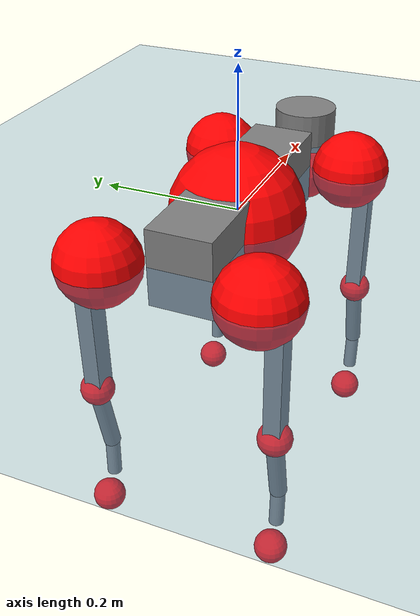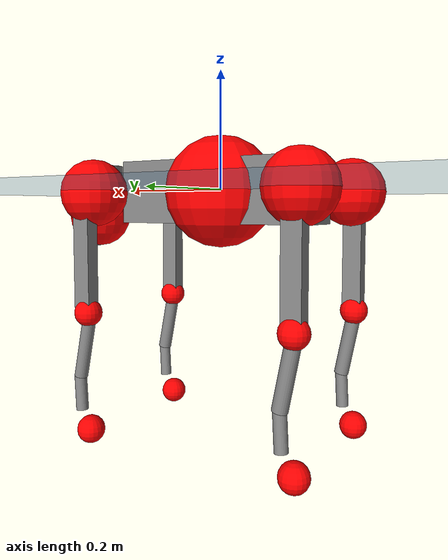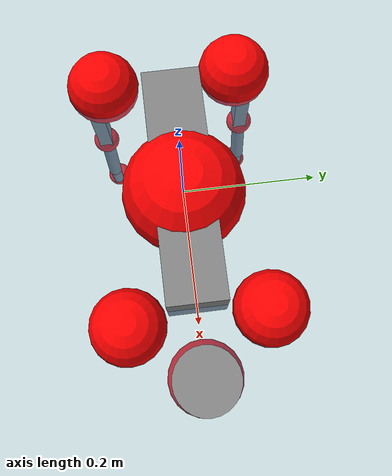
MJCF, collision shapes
<mujoco model="go2">
  <compiler angle="radian" assetdir="assets" balanceinertia="true" inertiafromgeom="false"/>

  <option timestep="0.005" density="1.2" viscosity="2e-05"/>

  <size nkey="1"/>

  <visual>
    <quality shadowsize="8192"/>
    <map shadowclip="0.5"/>
  </visual>

  <default>
    <default class="/">
      <geom contype="0" conaffinity="0" group="1" solref="-1000 -80"/>
      <site size="0.01 0.005 0.005" group="5"/>
      <general forcelimited="true" biastype="affine" gainprm="20" biasprm="0 -20 -0.5"/>
      <default class="go2">
        <joint armature="0.01" damping="0.01" frictionloss="0.2"/>
        <geom condim="1" margin="0.001"/>
        <default class="visual">
          <geom type="mesh" group="2"/>
        </default>
        <default class="collision">
          <geom group="3"/>
          <default class="foot">
            <geom size="0.022 0 0" condim="6" priority="1" friction="0.8 0.02 0.01" solimp="0.015 1 0.022"/>
          </default>
        </default>
        <default class="reward_collision_sphere">
          <geom group="5" rgba="1 0 0 1"/>
        </default>
      </default>
    </default>
  </default>

  <asset>
    <texture type="skybox" colorspace="auto" name="//unnamed_texture_0" builtin="gradient" rgb1="0.95 0.95 0.95" rgb2="0.95 0.95 0.95" width="100" height="600"/>
    <texture type="2d" colorspace="auto" name="texplane" builtin="checker" rgb1="0.345 0.575 0.748" rgb2="0.345 0.575 0.748" markrgb="1 1 1" width="512" height="512"/>
    <material name="MatPlane" class="/" texture="texplane" texuniform="true" texrepeat="2 2" specular="0.9"/>
    <material name="metal" class="/" rgba="0.9 0.95 0.95 1"/>
    <material name="black" class="/" rgba="0 0 0 1"/>
    <material name="white" class="/"/>
    <material name="gray" class="/" rgba="0.671705 0.692426 0.77427 1"/>
    <mesh name="base_0" class="/" file="base_0.obj"/>
    <mesh name="base_1" class="/" file="base_1.obj"/>
    <mesh name="base_2" class="/" file="base_2.obj"/>
    <mesh name="base_3" class="/" file="base_3.obj"/>
    <mesh name="base_4" class="/" file="base_4.obj"/>
    <mesh name="hip_0" class="/" file="hip_0.obj"/>
    <mesh name="hip_1" class="/" file="hip_1.obj"/>
    <mesh name="thigh_0" class="/" file="thigh_0.obj"/>
    <mesh name="thigh_1" class="/" file="thigh_1.obj"/>
    <mesh name="thigh_mirror_0" class="/" file="thigh_mirror_0.obj"/>
    <mesh name="thigh_mirror_1" class="/" file="thigh_mirror_1.obj"/>
    <mesh name="calf_0" class="/" file="calf_0.obj"/>
    <mesh name="calf_1" class="/" file="calf_1.obj"/>
    <mesh name="calf_mirror_0" class="/" file="calf_mirror_0.obj"/>
    <mesh name="calf_mirror_1" class="/" file="calf_mirror_1.obj"/>
    <mesh name="foot" class="/" file="foot.obj"/>
  </asset>

  <worldbody>
    <geom name="floor" class="/" size="100 100 0.125" type="plane" group="0" material="MatPlane"/>
    <light name="toplight_shadow" class="/" pos="0 0 5" dir="0.0990148 0.0990148 -0.990148" type="directional" ambient="0.04 0.04 0.04" diffuse="0.55 0.55 0.55" specular="0.12 0.12 0.12"/>
    <light name="toplight_fill" class="/" pos="0 0 5" dir="0.0990148 0.0990148 -0.990148" type="directional" castshadow="false" ambient="0.04 0.04 0.04" diffuse="0.3 0.3 0.3" specular="0.08 0.08 0.08"/>
    <body name="trunk" childclass="go2" pos="-0.00132041 0.00113393 -0.00249924" quat="1 0.000560169 0.000296617 0.000691065">
      <inertial pos="0.0181623 0.00204981 -0.0053965" quat="0.000976641 0.712404 -0.00124522 0.701768" mass="5.95335" diaginertia="0.0983266 0.0591457 0.0188445"/>
      <joint name="//unnamed_joint_0" type="free" armature="0" damping="0" frictionloss="0"/>
      <geom name="//unnamed_geom_1" class="visual" material="black" mesh="base_0"/>
      <geom name="//unnamed_geom_2" class="visual" material="black" mesh="base_1"/>
      <geom name="//unnamed_geom_3" class="visual" material="black" mesh="base_2"/>
      <geom name="//unnamed_geom_4" class="visual" material="white" mesh="base_3"/>
      <geom name="//unnamed_geom_5" class="visual" material="gray" mesh="base_4"/>
      <geom name="trunk_1" class="collision" size="0.177979 0.0442345 0.0539329" type="box"/>
      <geom name="trunk_2" class="collision" size="0.0473096 0.0425786" pos="0.280265 0 0.00950947" type="cylinder"/>
      <geom name="trunk_3" class="collision" size="0.044471" pos="0.288132 0 -0.0570568"/>
      <geom name="//unnamed_geom_9" class="reward_collision_sphere" size="0.0946192"/>
      <geom name="//unnamed_geom_10" class="reward_collision_sphere" size="0.0567715" pos="0.275348 0 -0.0427926"/>
      <site name="imu" pos="-0.013658 0.0128101 0.0266285" size="0.00946192"/>
      <camera name="track" pos="0 -1.80849 0" quat="0.707107 0.707107 0 0" mode="trackcom"/>
      <camera name="ego_camera" pos="0.306816 0 0.0427926" quat="-0.5 -0.5 0.5 0.5"/>
      <body name="FL_hip" pos="0.189979 0.041989 -0.00227332" quat="0.999999 -0.000793921 0.000325423 -0.00053189">
        <inertial pos="-0.00778229 0.00189482 -0.00256027" quat="0.493998 0.496572 0.509542 0.499749" mass="0.567741" diaginertia="0.000799165 0.000354452 0.000379335"/>
        <joint name="FL_hip_joint" pos="0 0 0" axis="0.999993 0.00371742 -7.38744e-06" range="-1.06522 1.04703" armature="0.0099366" damping="0.019333" frictionloss="0.177249"/>
        <geom name="//unnamed_geom_11" class="visual" material="metal" mesh="hip_0"/>
        <geom name="//unnamed_geom_12" class="visual" material="gray" mesh="hip_1"/>
        <geom name="//unnamed_geom_13" class="collision" size="0.0435248 0.0189238" pos="0 0.0723395 0" quat="0.707107 0.707107 0 0" type="cylinder"/>
        <geom name="//unnamed_geom_14" class="reward_collision_sphere" size="0.0567715" pos="0 0.063297 0"/>
        <body name="FL_thigh" pos="0.00121362 0.0851847 -0.00210855" quat="1 -7.82224e-06 0.000505651 -8.47515e-05">
          <inertial pos="-0.0030323 -0.019042 -0.028509" quat="0.832784 0.0799958 -0.00948263 0.547705" mass="0.949902" diaginertia="0.00553909 0.00340509 0.000693881"/>
          <joint name="FL_thigh_joint" pos="0 0 0" axis="-0.0152428 0.999705 0.018919" stiffness="0.0130433" range="-1.56607 3.44525" armature="0.00836977" damping="0.0218068" frictionloss="0.190309"/>
          <geom name="//unnamed_geom_15" class="visual" material="metal" mesh="thigh_0"/>
          <geom name="//unnamed_geom_16" class="visual" material="gray" mesh="thigh_1"/>
          <geom name="//unnamed_geom_17" class="collision" size="0.100769 0.0115908 0.0160853" pos="0 0 -0.101276" quat="0.707107 0 0.707107 0" type="box"/>
          <body name="FL_calf" pos="-0.00263505 -0.00155354 -0.201344" quat="1 -8.28203e-05 5.97521e-05 0.000224511">
            <inertial pos="0.00351721 -0.00282285 -0.132789" quat="0.710719 0.00230107 -0.00577349 0.703448" mass="0.19973" diaginertia="0.00137947 0.000850784 4.10102e-05"/>
            <joint name="FL_calf_joint" pos="0 0 0" axis="-0.00016762 0.999996 0.00285393" stiffness="0.017262" range="-2.69079 -0.831427" armature="0.00942437" damping="0.00716258" frictionloss="0.181601"/>
            <geom name="//unnamed_geom_18" class="visual" material="gray" mesh="calf_0"/>
            <geom name="//unnamed_geom_19" class="visual" material="black" mesh="calf_1"/>
            <geom name="FL_calf0" class="collision" size="0.0113543 0.0567715" pos="0.00786708 0 -0.0570568" quat="0.994493 0 -0.104807 0" type="cylinder"/>
            <geom name="//unnamed_geom_21" class="collision" size="0.0104081 0.0307512" pos="0.0196677 0 -0.14074" quat="0.999688 0 0.0249974 0" type="cylinder"/>
            <geom name="//unnamed_geom_22" class="visual" pos="0 0 -0.202552" quat="1 0 0 0" material="black" mesh="foot"/>
            <geom name="FL_foot" class="foot" size="0.0227538" pos="-0.00196677 0 -0.202552"/>
            <geom name="//unnamed_geom_24" class="reward_collision_sphere" size="0.0236548"/>
            <geom name="//unnamed_geom_25" class="reward_collision_sphere" size="0.0236548" pos="-0.00196677 0 -0.202552"/>
            <site name="FL_foot" class="foot" pos="-0.00196677 0 -0.202552" size="0.00946192"/>
          </body>
        </body>
      </body>
      <body name="FR_hip" pos="0.192627 -0.0394603 -0.00129509" quat="1 0.000149441 0.000331442 -4.15382e-05">
        <inertial pos="-0.0076561 -0.00324359 -0.00112348" quat="0.497207 0.505481 0.496254 0.501006" mass="0.563128" diaginertia="0.000774505 0.000366058 0.000374482"/>
        <joint name="FR_hip_joint" pos="0 0 0" axis="1 0.000540648 0.000583723" stiffness="0.00731667" range="-1.02529 1.04408" armature="0.0092643" damping="0.0108446" frictionloss="0.214657"/>
        <geom name="//unnamed_geom_26" class="visual" pos="0 -4.06863e-10 -1.74512e-08" quat="4.63268e-05 1 0 0" material="metal" mesh="hip_0"/>
        <geom name="//unnamed_geom_27" class="visual" pos="0 -6.59573e-10 4.31635e-08" quat="4.63268e-05 1 0 0" material="gray" mesh="hip_1"/>
        <geom name="//unnamed_geom_28" class="collision" size="0.0435248 0.0189238" pos="0 -0.0723395 0" quat="0.707107 0.707107 0 0" type="cylinder"/>
        <geom name="//unnamed_geom_29" class="reward_collision_sphere" size="0.0567715" pos="0 -0.063297 0"/>
        <body name="FR_thigh" pos="0.00240226 -0.0865829 -0.000144377" quat="0.999999 0.00124647 -9.43879e-05 -0.000555839">
          <inertial pos="-0.00338698 0.0202238 -0.0295704" quat="0.548995 -0.0247567 0.0976569 0.829732" mass="0.991557" diaginertia="0.0052205 0.00346594 0.000670559"/>
          <joint name="FR_thigh_joint" pos="0 0 0" axis="-0.0012154 -0.999996 -0.00255362" range="-3.46476 1.58335" armature="0.00922212" damping="0.012965" frictionloss="0.209503"/>
          <geom name="//unnamed_geom_30" class="visual" material="metal" mesh="thigh_mirror_0"/>
          <geom name="//unnamed_geom_31" class="visual" material="gray" mesh="thigh_mirror_1"/>
          <geom name="//unnamed_geom_32" class="collision" size="0.100769 0.0115908 0.0160853" pos="0 0 -0.101276" quat="0.707107 0 0.707107 0" type="box"/>
          <body name="FR_calf" pos="0.000224923 -0.000317367 -0.201867" quat="1 -3.26308e-05 2.35223e-05 2.0664e-05">
            <inertial pos="0.00806824 -0.000288418 -0.137301" quat="0.708615 -0.0131514 -0.00175011 0.70547" mass="0.209637" diaginertia="0.00146759 0.000888928 4.31885e-05"/>
            <joint name="FR_calf_joint" pos="0 0 0" axis="-0.0132017 -0.999883 -0.00768722" range="0.818747 2.67005" armature="0.00993087" damping="0.0108617" frictionloss="0.190259"/>
            <geom name="//unnamed_geom_33" class="visual" material="gray" mesh="calf_mirror_0"/>
            <geom name="//unnamed_geom_34" class="visual" material="black" mesh="calf_mirror_1"/>
            <geom name="FR_calf0" class="collision" size="0.0123005 0.0567715" pos="0.00983385 0 -0.0570568" quat="0.995004 0 -0.0998334 0" type="cylinder"/>
            <geom name="//unnamed_geom_36" class="collision" size="0.0104081 0.0307512" pos="0.0196677 0 -0.14074" quat="0.999688 0 0.0249974 0" type="cylinder"/>
            <geom name="//unnamed_geom_37" class="visual" pos="0 0 -0.202552" quat="1 0 0 0" material="black" mesh="foot"/>
            <geom name="FR_foot" class="foot" size="0.0191401" pos="-0.00196677 0 -0.202552"/>
            <geom name="//unnamed_geom_39" class="reward_collision_sphere" size="0.0236548"/>
            <geom name="//unnamed_geom_40" class="reward_collision_sphere" size="0.0236548" pos="-0.00196677 0 -0.202552"/>
            <site name="FR_foot" class="foot" pos="-0.00196677 0 -0.202552" size="0.00946192"/>
          </body>
        </body>
      </body>
      <body name="RL_hip" pos="-0.192368 0.0389086 0.00199023" quat="1 -0.000186115 0.000192382 -0.000287578">
        <inertial pos="0.00455911 0.0015418 0.00171338" quat="0.501561 0.499761 0.499561 0.499114" mass="0.563112" diaginertia="0.000803609 0.000349562 0.000369681"/>
        <joint name="RL_hip_joint" pos="0 0 0" axis="-0.999992 -0.00304424 -0.00256447" stiffness="0.0123716" range="-1.09072 1.03412" armature="0.00957182" damping="0.0023317" frictionloss="0.182851"/>
        <geom name="//unnamed_geom_41" class="visual" pos="-2.82588e-10 0 -5.53938e-08" quat="4.63268e-05 0 1 0" material="metal" mesh="hip_0"/>
        <geom name="//unnamed_geom_42" class="visual" pos="-4.58109e-10 0 -4.91264e-08" quat="4.63268e-05 0 1 0" material="gray" mesh="hip_1"/>
        <geom name="//unnamed_geom_43" class="collision" size="0.0435248 0.0189238" pos="0 0.0723395 0" quat="0.707107 0.707107 0 0" type="cylinder"/>
        <geom name="//unnamed_geom_44" class="reward_collision_sphere" size="0.0567715" pos="0 0.063297 0"/>
        <body name="RL_thigh" pos="-0.000657203 0.0825947 0.00211147" quat="1 2.49033e-05 -1.09194e-06 -8.95943e-06">
          <inertial pos="-0.00329906 -0.0192029 -0.0286362" quat="0.829524 0.0875435 -0.0204643 0.551187" mass="0.98789" diaginertia="0.0057478 0.00361054 0.000713852"/>
          <joint name="RL_thigh_joint" pos="0 0 0" axis="0.000304977 1 0.000159077" range="-0.509768 4.49902" armature="0.0107427" damping="0.00608215" frictionloss="0.197702"/>
          <geom name="//unnamed_geom_45" class="visual" material="metal" mesh="thigh_0"/>
          <geom name="//unnamed_geom_46" class="visual" material="gray" mesh="thigh_1"/>
          <geom name="//unnamed_geom_47" class="collision" size="0.100769 0.0115908 0.0160853" pos="0 0 -0.101276" quat="0.707107 0 0.707107 0" type="box"/>
          <body name="RL_calf" pos="-0.00144266 0.00195068 -0.203888" quat="1 -0.000212037 -0.000198103 0.00022704">
            <inertial pos="0.00831984 -0.00265411 -0.132834" quat="0.709415 0.00112599 -0.00256698 0.704786" mass="0.201143" diaginertia="0.00136332 0.000912084 3.98008e-05"/>
            <joint name="RL_calf_joint" pos="0 0 0" axis="0.00548373 0.999974 0.0046719" stiffness="0.0148461" range="-2.67174 -0.836066" armature="0.00981588" damping="0" frictionloss="0.20958"/>
            <geom name="//unnamed_geom_48" class="visual" material="gray" mesh="calf_0"/>
            <geom name="//unnamed_geom_49" class="visual" material="black" mesh="calf_1"/>
            <geom name="RL_calf0" class="collision" size="0.0123005 0.0567715" pos="0.00983385 0 -0.0570568" quat="0.995004 0 -0.0998334 0" type="cylinder"/>
            <geom name="//unnamed_geom_51" class="collision" size="0.0104081 0.0307512" pos="0.0196677 0 -0.14074" quat="0.999688 0 0.0249974 0" type="cylinder"/>
            <geom name="//unnamed_geom_52" class="visual" pos="0 0 -0.202552" quat="1 0 0 0" material="black" mesh="foot"/>
            <geom name="RL_foot" class="foot" size="0.0219338" pos="-0.00196677 0 -0.202552"/>
            <geom name="//unnamed_geom_54" class="reward_collision_sphere" size="0.0236548"/>
            <geom name="//unnamed_geom_55" class="reward_collision_sphere" size="0.0236548" pos="-0.00196677 0 -0.202552"/>
            <site name="RL_foot" class="foot" pos="-0.00196677 0 -0.202552" size="0.00946192"/>
          </body>
        </body>
      </body>
      <body name="RR_hip" pos="-0.189912 -0.0449709 -0.00155847" quat="0.999999 -0.00012617 1.05451e-06 0.00151967">
        <inertial pos="0.00450874 -0.00204065 -0.00148362" quat="0.499067 0.497129 0.497919 0.505838" mass="0.60865" diaginertia="0.000817813 0.00036113 0.000383953"/>
        <joint name="RR_hip_joint" pos="0 0 0" axis="-0.999924 0.00439877 -0.0115586" range="-0.993079 1.03857" armature="0.00840229" damping="0.015524" frictionloss="0.214851"/>
        <geom name="//unnamed_geom_56" class="visual" pos="2.79848e-10 -4.06863e-10 -3.79426e-08" quat="2.14617e-09 4.63268e-05 4.63268e-05 -1" material="metal" mesh="hip_0"/>
        <geom name="//unnamed_geom_57" class="visual" pos="4.64886e-10 -6.59573e-10 -9.22899e-08" quat="2.14617e-09 4.63268e-05 4.63268e-05 -1" material="gray" mesh="hip_1"/>
        <geom name="//unnamed_geom_58" class="collision" size="0.0435248 0.0189238" pos="0 -0.0723395 0" quat="0.707107 0.707107 0 0" type="cylinder"/>
        <geom name="//unnamed_geom_59" class="reward_collision_sphere" size="0.0567715" pos="0 -0.063297 0"/>
        <body name="RR_thigh" pos="0.0021946 -0.0868656 -0.00153052" quat="1 5.51907e-05 0.00014152 -7.94131e-05">
          <inertial pos="-0.00548145 0.0215123 -0.0310431" quat="0.550058 -0.0200523 0.0834475 0.830705" mass="0.967379" diaginertia="0.00563016 0.0035025 0.000684479"/>
          <joint name="RR_thigh_joint" pos="0 0 0" axis="0.00030331 -1 0.000270054" range="-4.51208 0.511369" armature="0.00912964" damping="0.018407" frictionloss="0.186852"/>
          <geom name="//unnamed_geom_60" class="visual" material="metal" mesh="thigh_mirror_0"/>
          <geom name="//unnamed_geom_61" class="visual" material="gray" mesh="thigh_mirror_1"/>
          <geom name="//unnamed_geom_62" class="collision" size="0.100769 0.0115908 0.0160853" pos="0 0 -0.101276" quat="0.707107 0 0.707107 0" type="box"/>
          <body name="RR_calf" pos="-0.00147782 -0.00045384 -0.202123" quat="1 0.00034283 -0.000229147 0.000386253">
            <inertial pos="0.00879566 0.000634893 -0.134947" quat="0.700911 -7.2679e-05 -0.00127085 0.713248" mass="0.197753" diaginertia="0.00130848 0.00086518 4.03191e-05"/>
            <joint name="RR_calf_joint" pos="0 0 0" axis="-0.000250949 -1 0.000503667" range="0.84113 2.76721" armature="0.00834695" damping="0.0251914" frictionloss="0.198292"/>
            <geom name="//unnamed_geom_63" class="visual" material="gray" mesh="calf_mirror_0"/>
            <geom name="//unnamed_geom_64" class="visual" material="black" mesh="calf_mirror_1"/>
            <geom name="RR_calf0" class="collision" size="0.0123005 0.0567715" pos="0.00983385 0 -0.0570568" quat="0.995004 0 -0.0998334 0" type="cylinder"/>
            <geom name="//unnamed_geom_66" class="collision" size="0.0104081 0.0307512" pos="0.0196677 0 -0.14074" quat="0.999688 0 0.0249974 0" type="cylinder"/>
            <geom name="//unnamed_geom_67" class="visual" pos="0 0 -0.202552" quat="1 0 0 0" material="black" mesh="foot"/>
            <geom name="RR_foot" class="foot" size="0.0166157" pos="-0.00196677 0 -0.202552"/>
            <geom name="//unnamed_geom_69" class="reward_collision_sphere" size="0.0236548"/>
            <geom name="//unnamed_geom_70" class="reward_collision_sphere" size="0.0236548" pos="-0.00196677 0 -0.202552"/>
            <site name="RR_foot" class="foot" pos="-0.00196677 0 -0.202552" size="0.00946192"/>
          </body>
        </body>
      </body>
    </body>
  </worldbody>

  <contact>
    <pair class="/" geom1="floor" geom2="FL_foot" name="//unnamed_contact_0"/>
    <pair class="/" geom1="floor" geom2="FR_foot" name="//unnamed_contact_1"/>
    <pair class="/" geom1="floor" geom2="RL_foot" name="//unnamed_contact_2"/>
    <pair class="/" geom1="floor" geom2="RR_foot" name="//unnamed_contact_3"/>
  </contact>

  <actuator>
    <general name="FL_hip" class="/" joint="FL_hip_joint" forcerange="-23.5542 23.5542" gainprm="17.8729" biasprm="0 -17.8729 -0.472976"/>
    <general name="FL_thigh" class="/" joint="FL_thigh_joint" forcerange="-22.3831 22.3831" gainprm="17.8729" biasprm="0 -17.8729 -0.472976"/>
    <general name="FL_calf" class="/" joint="FL_calf_joint" forcerange="-44.2768 44.2768" gainprm="17.8729" biasprm="0 -17.8729 -0.472976"/>
    <general name="FR_hip" class="/" joint="FR_hip_joint" forcerange="-22.6526 22.6526" gainprm="17.8729" biasprm="0 -17.8729 -0.472976"/>
    <general name="FR_thigh" class="/" joint="FR_thigh_joint" forcerange="-24.1036 24.1036" gainprm="17.8729" biasprm="0 -17.8729 -0.472976"/>
    <general name="FR_calf" class="/" joint="FR_calf_joint" forcerange="-37.4561 37.4561" gainprm="17.8729" biasprm="0 -17.8729 -0.472976"/>
    <general name="RL_hip" class="/" joint="RL_hip_joint" forcerange="-21.4514 21.4514" gainprm="17.8729" biasprm="0 -17.8729 -0.472976"/>
    <general name="RL_thigh" class="/" joint="RL_thigh_joint" forcerange="-24.5886 24.5886" gainprm="17.8729" biasprm="0 -17.8729 -0.472976"/>
    <general name="RL_calf" class="/" joint="RL_calf_joint" forcerange="-41.9062 41.9062" gainprm="17.8729" biasprm="0 -17.8729 -0.472976"/>
    <general name="RR_hip" class="/" joint="RR_hip_joint" forcerange="-23.0323 23.0323" gainprm="17.8729" biasprm="0 -17.8729 -0.472976"/>
    <general name="RR_thigh" class="/" joint="RR_thigh_joint" forcerange="-24.3739 24.3739" gainprm="17.8729" biasprm="0 -17.8729 -0.472976"/>
    <general name="RR_calf" class="/" joint="RR_calf_joint" forcerange="-42.0674 42.0674" gainprm="17.8729" biasprm="0 -17.8729 -0.472976"/>
  </actuator>

  <sensor>
    <gyro site="imu" name="imu_angular_velocity"/>
    <velocimeter site="imu" name="imu_linear_velocity"/>
    <framelinvel objtype="site" objname="FL_foot" name="FL_foot_global_linear_velocity"/>
    <framelinvel objtype="site" objname="FR_foot" name="FR_foot_global_linear_velocity"/>
    <framelinvel objtype="site" objname="RL_foot" name="RL_foot_global_linear_velocity"/>
    <framelinvel objtype="site" objname="RR_foot" name="RR_foot_global_linear_velocity"/>
  </sensor>

  <keyframe>
    <key name="home" qpos="0 0 0.325 1 0 0 0 0.1 0.8 -1.5 -0.1 -0.8 1.5 -0.1 0.8 -1.5 0.1 -0.8 1.5"/>
  </keyframe>
</mujoco>
